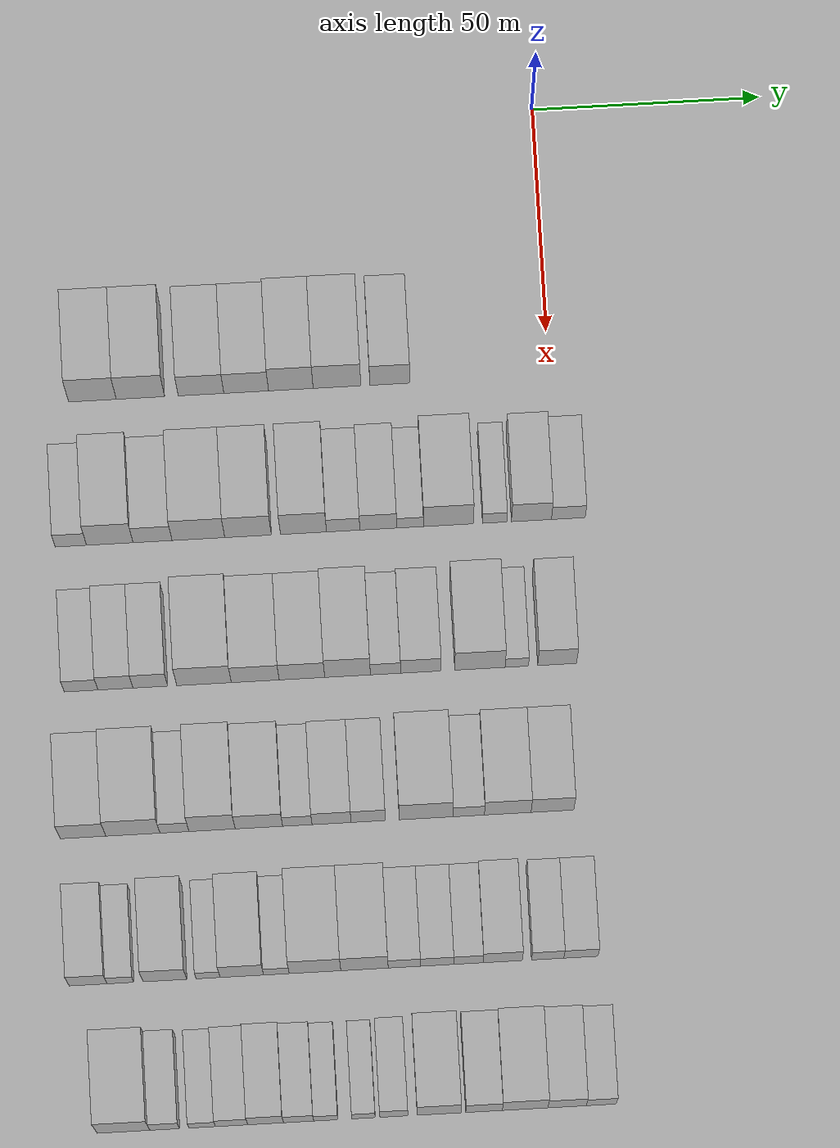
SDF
<sdf version="1.6">
 <world name="default">
  <include><name>ground_plane_1</name><uri>model://HANNAS_ground_plane</uri></include>
  <include>
   <name>ground_plane_2</name>
   <uri>model://HANNAS_ground_plane</uri>
   <pose>100 0 0  0 0 0</pose>
  </include>
  <model name="building_49">
   <static>1</static>
   <pose>50.0000 -99.9588 0 0.000000 0.000000 0.000000</pose>
   <link name="link">
    <pose>0 0 12.00 0 0 0</pose>
    <collision name="collision"><geometry><box><size>20.0000 10.4248 24.0000</size></box></geometry></collision>
    <visual name="visual">
     <cast_shadows>0</cast_shadows>
     <geometry><box><size>20.0000 10.4248 24.0000</size></box></geometry>
     <material>
      <script>
       <uri>model://HANNAS_wall/materials/scripts</uri>
       <uri>model://HANNAS_wall/materials/textures</uri>
       <name>vrc/HANNAS_wall</name>
      </script>
     </material>
    </visual>
   </link>
  </model>
  <model name="building_50">
   <static>1</static>
   <pose>50.0000 -89.4481 0 0.000000 0.000000 0.000000</pose>
   <link name="link">
    <pose>0 0 12.00 0 0 0</pose>
    <collision name="collision"><geometry><box><size>20.0000 10.5966 24.0000</size></box></geometry></collision>
    <visual name="visual">
     <cast_shadows>0</cast_shadows>
     <geometry><box><size>20.0000 10.5966 24.0000</size></box></geometry>
     <material>
      <script>
       <uri>model://HANNAS_wall/materials/scripts</uri>
       <uri>model://HANNAS_wall/materials/textures</uri>
       <name>vrc/HANNAS_wall</name>
      </script>
     </material>
    </visual>
   </link>
  </model>
  <model name="building_51">
   <static>1</static>
   <pose>50.0000 -76.1625 0 0.000000 0.000000 0.000000</pose>
   <link name="link">
    <pose>0 0 10.50 0 0 0</pose>
    <collision name="collision"><geometry><box><size>20.0000 9.9746 21.0000</size></box></geometry></collision>
    <visual name="visual">
     <cast_shadows>0</cast_shadows>
     <geometry><box><size>20.0000 9.9746 21.0000</size></box></geometry>
     <material>
      <script>
       <uri>model://HANNAS_wall/materials/scripts</uri>
       <uri>model://HANNAS_wall/materials/textures</uri>
       <name>vrc/HANNAS_wall</name>
      </script>
     </material>
    </visual>
   </link>
  </model>
  <model name="building_52">
   <static>1</static>
   <pose>50.0000 -66.2710 0 0.000000 0.000000 0.000000</pose>
   <link name="link">
    <pose>0 0 10.50 0 0 0</pose>
    <collision name="collision"><geometry><box><size>20.0000 9.8085 21.0000</size></box></geometry></collision>
    <visual name="visual">
     <cast_shadows>0</cast_shadows>
     <geometry><box><size>20.0000 9.8085 21.0000</size></box></geometry>
     <material>
      <script>
       <uri>model://HANNAS_wall/materials/scripts</uri>
       <uri>model://HANNAS_wall/materials/textures</uri>
       <name>vrc/HANNAS_wall</name>
      </script>
     </material>
    </visual>
   </link>
  </model>
  <model name="building_53">
   <static>1</static>
   <pose>50.0000 -56.4838 0 0.000000 0.000000 0.000000</pose>
   <link name="link">
    <pose>0 0 12.00 0 0 0</pose>
    <collision name="collision"><geometry><box><size>20.0000 9.7658 24.0000</size></box></geometry></collision>
    <visual name="visual">
     <cast_shadows>0</cast_shadows>
     <geometry><box><size>20.0000 9.7658 24.0000</size></box></geometry>
     <material>
      <script>
       <uri>model://HANNAS_wall/materials/scripts</uri>
       <uri>model://HANNAS_wall/materials/textures</uri>
       <name>vrc/HANNAS_wall</name>
      </script>
     </material>
    </visual>
   </link>
  </model>
  <model name="building_54">
   <static>1</static>
   <pose>50.0000 -46.3815 0 0.000000 0.000000 0.000000</pose>
   <link name="link">
    <pose>0 0 12.00 0 0 0</pose>
    <collision name="collision"><geometry><box><size>20.0000 10.4387 24.0000</size></box></geometry></collision>
    <visual name="visual">
     <cast_shadows>0</cast_shadows>
     <geometry><box><size>20.0000 10.4387 24.0000</size></box></geometry>
     <material>
      <script>
       <uri>model://HANNAS_wall/materials/scripts</uri>
       <uri>model://HANNAS_wall/materials/textures</uri>
       <name>vrc/HANNAS_wall</name>
      </script>
     </material>
    </visual>
   </link>
  </model>
  <model name="building_55">
   <static>1</static>
   <pose>50.0000 -34.7973 0 0.000000 0.000000 0.000000</pose>
   <link name="link">
    <pose>0 0 10.50 0 0 0</pose>
    <collision name="collision"><geometry><box><size>20.0000 8.7298 21.0000</size></box></geometry></collision>
    <visual name="visual">
     <cast_shadows>0</cast_shadows>
     <geometry><box><size>20.0000 8.7298 21.0000</size></box></geometry>
     <material>
      <script>
       <uri>model://HANNAS_wall/materials/scripts</uri>
       <uri>model://HANNAS_wall/materials/textures</uri>
       <name>vrc/HANNAS_wall</name>
      </script>
     </material>
    </visual>
   </link>
  </model>
  <model name="building_163">
   <static>1</static>
   <pose>82.0000 -106.1542 0 0.000000 0.000000 0.000000</pose>
   <link name="link">
    <pose>0 0 7.50 0 0 0</pose>
    <collision name="collision"><geometry><box><size>20.0000 6.8394 15.0000</size></box></geometry></collision>
    <visual name="visual">
     <cast_shadows>0</cast_shadows>
     <geometry><box><size>20.0000 6.8394 15.0000</size></box></geometry>
     <material>
      <script>
       <uri>model://HANNAS_wall/materials/scripts</uri>
       <uri>model://HANNAS_wall/materials/textures</uri>
       <name>vrc/HANNAS_wall</name>
      </script>
     </material>
    </visual>
   </link>
  </model>
  <model name="building_164">
   <static>1</static>
   <pose>82.0000 -97.6618 0 0.000000 0.000000 0.000000</pose>
   <link name="link">
    <pose>0 0 12.00 0 0 0</pose>
    <collision name="collision"><geometry><box><size>20.0000 10.1453 24.0000</size></box></geometry></collision>
    <visual name="visual">
     <cast_shadows>0</cast_shadows>
     <geometry><box><size>20.0000 10.1453 24.0000</size></box></geometry>
     <material>
      <script>
       <uri>model://HANNAS_wall/materials/scripts</uri>
       <uri>model://HANNAS_wall/materials/textures</uri>
       <name>vrc/HANNAS_wall</name>
      </script>
     </material>
    </visual>
   </link>
  </model>
  <model name="building_165">
   <static>1</static>
   <pose>82.0000 -88.3430 0 0.000000 0.000000 0.000000</pose>
   <link name="link">
    <pose>0 0 9.00 0 0 0</pose>
    <collision name="collision"><geometry><box><size>20.0000 8.4923 18.0000</size></box></geometry></collision>
    <visual name="visual">
     <cast_shadows>0</cast_shadows>
     <geometry><box><size>20.0000 8.4923 18.0000</size></box></geometry>
     <material>
      <script>
       <uri>model://HANNAS_wall/materials/scripts</uri>
       <uri>model://HANNAS_wall/materials/textures</uri>
       <name>vrc/HANNAS_wall</name>
      </script>
     </material>
    </visual>
   </link>
  </model>
  <model name="building_166">
   <static>1</static>
   <pose>82.0000 -78.3413 0 0.000000 0.000000 0.000000</pose>
   <link name="link">
    <pose>0 0 12.00 0 0 0</pose>
    <collision name="collision"><geometry><box><size>20.0000 11.5110 24.0000</size></box></geometry></collision>
    <visual name="visual">
     <cast_shadows>0</cast_shadows>
     <geometry><box><size>20.0000 11.5110 24.0000</size></box></geometry>
     <material>
      <script>
       <uri>model://HANNAS_wall/materials/scripts</uri>
       <uri>model://HANNAS_wall/materials/textures</uri>
       <name>vrc/HANNAS_wall</name>
      </script>
     </material>
    </visual>
   </link>
  </model>
  <model name="building_167">
   <static>1</static>
   <pose>82.0000 -67.5067 0 0.000000 0.000000 0.000000</pose>
   <link name="link">
    <pose>0 0 12.00 0 0 0</pose>
    <collision name="collision"><geometry><box><size>20.0000 10.1584 24.0000</size></box></geometry></collision>
    <visual name="visual">
     <cast_shadows>0</cast_shadows>
     <geometry><box><size>20.0000 10.1584 24.0000</size></box></geometry>
     <material>
      <script>
       <uri>model://HANNAS_wall/materials/scripts</uri>
       <uri>model://HANNAS_wall/materials/textures</uri>
       <name>vrc/HANNAS_wall</name>
      </script>
     </material>
    </visual>
   </link>
  </model>
  <model name="building_168">
   <static>1</static>
   <pose>82.0000 -55.4093 0 0.000000 0.000000 0.000000</pose>
   <link name="link">
    <pose>0 0 12.00 0 0 0</pose>
    <collision name="collision"><geometry><box><size>20.0000 10.0363 24.0000</size></box></geometry></collision>
    <visual name="visual">
     <cast_shadows>0</cast_shadows>
     <geometry><box><size>20.0000 10.0363 24.0000</size></box></geometry>
     <material>
      <script>
       <uri>model://HANNAS_wall/materials/scripts</uri>
       <uri>model://HANNAS_wall/materials/textures</uri>
       <name>vrc/HANNAS_wall</name>
      </script>
     </material>
    </visual>
   </link>
  </model>
  <model name="building_169">
   <static>1</static>
   <pose>82.0000 -46.7449 0 0.000000 0.000000 0.000000</pose>
   <link name="link">
    <pose>0 0 7.50 0 0 0</pose>
    <collision name="collision"><geometry><box><size>20.0000 7.2926 15.0000</size></box></geometry></collision>
    <visual name="visual">
     <cast_shadows>0</cast_shadows>
     <geometry><box><size>20.0000 7.2926 15.0000</size></box></geometry>
     <material>
      <script>
       <uri>model://HANNAS_wall/materials/scripts</uri>
       <uri>model://HANNAS_wall/materials/textures</uri>
       <name>vrc/HANNAS_wall</name>
      </script>
     </material>
    </visual>
   </link>
  </model>
  <model name="building_170">
   <static>1</static>
   <pose>82.0000 -39.0817 0 0.000000 0.000000 0.000000</pose>
   <link name="link">
    <pose>0 0 9.00 0 0 0</pose>
    <collision name="collision"><geometry><box><size>20.0000 8.0338 18.0000</size></box></geometry></collision>
    <visual name="visual">
     <cast_shadows>0</cast_shadows>
     <geometry><box><size>20.0000 8.0338 18.0000</size></box></geometry>
     <material>
      <script>
       <uri>model://HANNAS_wall/materials/scripts</uri>
       <uri>model://HANNAS_wall/materials/textures</uri>
       <name>vrc/HANNAS_wall</name>
      </script>
     </material>
    </visual>
   </link>
  </model>
  <model name="building_171">
   <static>1</static>
   <pose>82.0000 -32.1521 0 0.000000 0.000000 0.000000</pose>
   <link name="link">
    <pose>0 0 6.00 0 0 0</pose>
    <collision name="collision"><geometry><box><size>20.0000 5.8253 12.0000</size></box></geometry></collision>
    <visual name="visual">
     <cast_shadows>0</cast_shadows>
     <geometry><box><size>20.0000 5.8253 12.0000</size></box></geometry>
     <material>
      <script>
       <uri>model://HANNAS_wall/materials/scripts</uri>
       <uri>model://HANNAS_wall/materials/textures</uri>
       <name>vrc/HANNAS_wall</name>
      </script>
     </material>
    </visual>
   </link>
  </model>
  <model name="building_172">
   <static>1</static>
   <pose>82.0000 -23.7880 0 0.000000 0.000000 0.000000</pose>
   <link name="link">
    <pose>0 0 12.00 0 0 0</pose>
    <collision name="collision"><geometry><box><size>20.0000 10.9029 24.0000</size></box></geometry></collision>
    <visual name="visual">
     <cast_shadows>0</cast_shadows>
     <geometry><box><size>20.0000 10.9029 24.0000</size></box></geometry>
     <material>
      <script>
       <uri>model://HANNAS_wall/materials/scripts</uri>
       <uri>model://HANNAS_wall/materials/textures</uri>
       <name>vrc/HANNAS_wall</name>
      </script>
     </material>
    </visual>
   </link>
  </model>
  <model name="building_173">
   <static>1</static>
   <pose>82.0000 -13.6781 0 0.000000 0.000000 0.000000</pose>
   <link name="link">
    <pose>0 0 6.00 0 0 0</pose>
    <collision name="collision"><geometry><box><size>20.0000 5.3170 12.0000</size></box></geometry></collision>
    <visual name="visual">
     <cast_shadows>0</cast_shadows>
     <geometry><box><size>20.0000 5.3170 12.0000</size></box></geometry>
     <material>
      <script>
       <uri>model://HANNAS_wall/materials/scripts</uri>
       <uri>model://HANNAS_wall/materials/textures</uri>
       <name>vrc/HANNAS_wall</name>
      </script>
     </material>
    </visual>
   </link>
  </model>
  <model name="building_174">
   <static>1</static>
   <pose>82.0000 -5.6536 0 0.000000 0.000000 0.000000</pose>
   <link name="link">
    <pose>0 0 10.50 0 0 0</pose>
    <collision name="collision"><geometry><box><size>20.0000 8.7319 21.0000</size></box></geometry></collision>
    <visual name="visual">
     <cast_shadows>0</cast_shadows>
     <geometry><box><size>20.0000 8.7319 21.0000</size></box></geometry>
     <material>
      <script>
       <uri>model://HANNAS_wall/materials/scripts</uri>
       <uri>model://HANNAS_wall/materials/textures</uri>
       <name>vrc/HANNAS_wall</name>
      </script>
     </material>
    </visual>
   </link>
  </model>
  <model name="building_175">
   <static>1</static>
   <pose>82.0000 2.4077 0 0.000000 0.000000 0.000000</pose>
   <link name="link">
    <pose>0 0 7.50 0 0 0</pose>
    <collision name="collision"><geometry><box><size>20.0000 7.3907 15.0000</size></box></geometry></collision>
    <visual name="visual">
     <cast_shadows>0</cast_shadows>
     <geometry><box><size>20.0000 7.3907 15.0000</size></box></geometry>
     <material>
      <script>
       <uri>model://HANNAS_wall/materials/scripts</uri>
       <uri>model://HANNAS_wall/materials/textures</uri>
       <name>vrc/HANNAS_wall</name>
      </script>
     </material>
    </visual>
   </link>
  </model>
  <model name="building_286">
   <static>1</static>
   <pose>114.0000 -105.4328 0 0.000000 0.000000 0.000000</pose>
   <link name="link">
    <pose>0 0 7.50 0 0 0</pose>
    <collision name="collision"><geometry><box><size>20.0000 7.3170 15.0000</size></box></geometry></collision>
    <visual name="visual">
     <cast_shadows>0</cast_shadows>
     <geometry><box><size>20.0000 7.3170 15.0000</size></box></geometry>
     <material>
      <script>
       <uri>model://HANNAS_wall/materials/scripts</uri>
       <uri>model://HANNAS_wall/materials/textures</uri>
       <name>vrc/HANNAS_wall</name>
      </script>
     </material>
    </visual>
   </link>
  </model>
  <model name="building_287">
   <static>1</static>
   <pose>114.0000 -97.9770 0 0.000000 0.000000 0.000000</pose>
   <link name="link">
    <pose>0 0 9.00 0 0 0</pose>
    <collision name="collision"><geometry><box><size>20.0000 7.5945 18.0000</size></box></geometry></collision>
    <visual name="visual">
     <cast_shadows>0</cast_shadows>
     <geometry><box><size>20.0000 7.5945 18.0000</size></box></geometry>
     <material>
      <script>
       <uri>model://HANNAS_wall/materials/scripts</uri>
       <uri>model://HANNAS_wall/materials/textures</uri>
       <name>vrc/HANNAS_wall</name>
      </script>
     </material>
    </visual>
   </link>
  </model>
  <model name="building_288">
   <static>1</static>
   <pose>114.0000 -90.4084 0 0.000000 0.000000 0.000000</pose>
   <link name="link">
    <pose>0 0 9.00 0 0 0</pose>
    <collision name="collision"><geometry><box><size>20.0000 7.5426 18.0000</size></box></geometry></collision>
    <visual name="visual">
     <cast_shadows>0</cast_shadows>
     <geometry><box><size>20.0000 7.5426 18.0000</size></box></geometry>
     <material>
      <script>
       <uri>model://HANNAS_wall/materials/scripts</uri>
       <uri>model://HANNAS_wall/materials/textures</uri>
       <name>vrc/HANNAS_wall</name>
      </script>
     </material>
    </visual>
   </link>
  </model>
  <model name="building_289">
   <static>1</static>
   <pose>114.0000 -78.7111 0 0.000000 0.000000 0.000000</pose>
   <link name="link">
    <pose>0 0 12.00 0 0 0</pose>
    <collision name="collision"><geometry><box><size>20.0000 11.8520 24.0000</size></box></geometry></collision>
    <visual name="visual">
     <cast_shadows>0</cast_shadows>
     <geometry><box><size>20.0000 11.8520 24.0000</size></box></geometry>
     <material>
      <script>
       <uri>model://HANNAS_wall/materials/scripts</uri>
       <uri>model://HANNAS_wall/materials/textures</uri>
       <name>vrc/HANNAS_wall</name>
      </script>
     </material>
    </visual>
   </link>
  </model>
  <model name="building_290">
   <static>1</static>
   <pose>114.0000 -67.5871 0 0.000000 0.000000 0.000000</pose>
   <link name="link">
    <pose>0 0 10.50 0 0 0</pose>
    <collision name="collision"><geometry><box><size>20.0000 10.3959 21.0000</size></box></geometry></collision>
    <visual name="visual">
     <cast_shadows>0</cast_shadows>
     <geometry><box><size>20.0000 10.3959 21.0000</size></box></geometry>
     <material>
      <script>
       <uri>model://HANNAS_wall/materials/scripts</uri>
       <uri>model://HANNAS_wall/materials/textures</uri>
       <name>vrc/HANNAS_wall</name>
      </script>
     </material>
    </visual>
   </link>
  </model>
  <model name="building_291">
   <static>1</static>
   <pose>114.0000 -57.4362 0 0.000000 0.000000 0.000000</pose>
   <link name="link">
    <pose>0 0 10.50 0 0 0</pose>
    <collision name="collision"><geometry><box><size>20.0000 9.9060 21.0000</size></box></geometry></collision>
    <visual name="visual">
     <cast_shadows>0</cast_shadows>
     <geometry><box><size>20.0000 9.9060 21.0000</size></box></geometry>
     <material>
      <script>
       <uri>model://HANNAS_wall/materials/scripts</uri>
       <uri>model://HANNAS_wall/materials/textures</uri>
       <name>vrc/HANNAS_wall</name>
      </script>
     </material>
    </visual>
   </link>
  </model>
  <model name="building_292">
   <static>1</static>
   <pose>114.0000 -47.5204 0 0.000000 0.000000 0.000000</pose>
   <link name="link">
    <pose>0 0 12.00 0 0 0</pose>
    <collision name="collision"><geometry><box><size>20.0000 9.9255 24.0000</size></box></geometry></collision>
    <visual name="visual">
     <cast_shadows>0</cast_shadows>
     <geometry><box><size>20.0000 9.9255 24.0000</size></box></geometry>
     <material>
      <script>
       <uri>model://HANNAS_wall/materials/scripts</uri>
       <uri>model://HANNAS_wall/materials/textures</uri>
       <name>vrc/HANNAS_wall</name>
      </script>
     </material>
    </visual>
   </link>
  </model>
  <model name="building_293">
   <static>1</static>
   <pose>114.0000 -39.2639 0 0.000000 0.000000 0.000000</pose>
   <link name="link">
    <pose>0 0 7.50 0 0 0</pose>
    <collision name="collision"><geometry><box><size>20.0000 6.5876 15.0000</size></box></geometry></collision>
    <visual name="visual">
     <cast_shadows>0</cast_shadows>
     <geometry><box><size>20.0000 6.5876 15.0000</size></box></geometry>
     <material>
      <script>
       <uri>model://HANNAS_wall/materials/scripts</uri>
       <uri>model://HANNAS_wall/materials/textures</uri>
       <name>vrc/HANNAS_wall</name>
      </script>
     </material>
    </visual>
   </link>
  </model>
  <model name="building_294">
   <static>1</static>
   <pose>114.0000 -31.5886 0 0.000000 0.000000 0.000000</pose>
   <link name="link">
    <pose>0 0 9.00 0 0 0</pose>
    <collision name="collision"><geometry><box><size>20.0000 8.7628 18.0000</size></box></geometry></collision>
    <visual name="visual">
     <cast_shadows>0</cast_shadows>
     <geometry><box><size>20.0000 8.7628 18.0000</size></box></geometry>
     <material>
      <script>
       <uri>model://HANNAS_wall/materials/scripts</uri>
       <uri>model://HANNAS_wall/materials/textures</uri>
       <name>vrc/HANNAS_wall</name>
      </script>
     </material>
    </visual>
   </link>
  </model>
  <model name="building_295">
   <static>1</static>
   <pose>114.0000 -18.7395 0 0.000000 0.000000 0.000000</pose>
   <link name="link">
    <pose>0 0 12.00 0 0 0</pose>
    <collision name="collision"><geometry><box><size>20.0000 10.9355 24.0000</size></box></geometry></collision>
    <visual name="visual">
     <cast_shadows>0</cast_shadows>
     <geometry><box><size>20.0000 10.9355 24.0000</size></box></geometry>
     <material>
      <script>
       <uri>model://HANNAS_wall/materials/scripts</uri>
       <uri>model://HANNAS_wall/materials/textures</uri>
       <name>vrc/HANNAS_wall</name>
      </script>
     </material>
    </visual>
   </link>
  </model>
  <model name="building_296">
   <static>1</static>
   <pose>114.0000 -10.7258 0 0.000000 0.000000 0.000000</pose>
   <link name="link">
    <pose>0 0 6.00 0 0 0</pose>
    <collision name="collision"><geometry><box><size>20.0000 5.0919 12.0000</size></box></geometry></collision>
    <visual name="visual">
     <cast_shadows>0</cast_shadows>
     <geometry><box><size>20.0000 5.0919 12.0000</size></box></geometry>
     <material>
      <script>
       <uri>model://HANNAS_wall/materials/scripts</uri>
       <uri>model://HANNAS_wall/materials/textures</uri>
       <name>vrc/HANNAS_wall</name>
      </script>
     </material>
    </visual>
   </link>
  </model>
  <model name="building_297">
   <static>1</static>
   <pose>114.0000 -1.9573 0 0.000000 0.000000 0.000000</pose>
   <link name="link">
    <pose>0 0 10.50 0 0 0</pose>
    <collision name="collision"><geometry><box><size>20.0000 8.4452 21.0000</size></box></geometry></collision>
    <visual name="visual">
     <cast_shadows>0</cast_shadows>
     <geometry><box><size>20.0000 8.4452 21.0000</size></box></geometry>
     <material>
      <script>
       <uri>model://HANNAS_wall/materials/scripts</uri>
       <uri>model://HANNAS_wall/materials/textures</uri>
       <name>vrc/HANNAS_wall</name>
      </script>
     </material>
    </visual>
   </link>
  </model>
  <model name="building_404">
   <static>1</static>
   <pose>146.0000 -106.5163 0 0.000000 0.000000 0.000000</pose>
   <link name="link">
    <pose>0 0 10.50 0 0 0</pose>
    <collision name="collision"><geometry><box><size>20.0000 9.8703 21.0000</size></box></geometry></collision>
    <visual name="visual">
     <cast_shadows>0</cast_shadows>
     <geometry><box><size>20.0000 9.8703 21.0000</size></box></geometry>
     <material>
      <script>
       <uri>model://HANNAS_wall/materials/scripts</uri>
       <uri>model://HANNAS_wall/materials/textures</uri>
       <name>vrc/HANNAS_wall</name>
      </script>
     </material>
    </visual>
   </link>
  </model>
  <model name="building_405">
   <static>1</static>
   <pose>146.0000 -95.7256 0 0.000000 0.000000 0.000000</pose>
   <link name="link">
    <pose>0 0 12.00 0 0 0</pose>
    <collision name="collision"><geometry><box><size>20.0000 11.7111 24.0000</size></box></geometry></collision>
    <visual name="visual">
     <cast_shadows>0</cast_shadows>
     <geometry><box><size>20.0000 11.7111 24.0000</size></box></geometry>
     <material>
      <script>
       <uri>model://HANNAS_wall/materials/scripts</uri>
       <uri>model://HANNAS_wall/materials/textures</uri>
       <name>vrc/HANNAS_wall</name>
      </script>
     </material>
    </visual>
   </link>
  </model>
  <model name="building_406">
   <static>1</static>
   <pose>146.0000 -86.7287 0 0.000000 0.000000 0.000000</pose>
   <link name="link">
    <pose>0 0 7.50 0 0 0</pose>
    <collision name="collision"><geometry><box><size>20.0000 6.2827 15.0000</size></box></geometry></collision>
    <visual name="visual">
     <cast_shadows>0</cast_shadows>
     <geometry><box><size>20.0000 6.2827 15.0000</size></box></geometry>
     <material>
      <script>
       <uri>model://HANNAS_wall/materials/scripts</uri>
       <uri>model://HANNAS_wall/materials/textures</uri>
       <name>vrc/HANNAS_wall</name>
      </script>
     </material>
    </visual>
   </link>
  </model>
  <model name="building_407">
   <static>1</static>
   <pose>146.0000 -78.5774 0 0.000000 0.000000 0.000000</pose>
   <link name="link">
    <pose>0 0 12.00 0 0 0</pose>
    <collision name="collision"><geometry><box><size>20.0000 10.0199 24.0000</size></box></geometry></collision>
    <visual name="visual">
     <cast_shadows>0</cast_shadows>
     <geometry><box><size>20.0000 10.0199 24.0000</size></box></geometry>
     <material>
      <script>
       <uri>model://HANNAS_wall/materials/scripts</uri>
       <uri>model://HANNAS_wall/materials/textures</uri>
       <name>vrc/HANNAS_wall</name>
      </script>
     </material>
    </visual>
   </link>
  </model>
  <model name="building_408">
   <static>1</static>
   <pose>146.0000 -68.4404 0 0.000000 0.000000 0.000000</pose>
   <link name="link">
    <pose>0 0 10.50 0 0 0</pose>
    <collision name="collision"><geometry><box><size>20.0000 10.2541 21.0000</size></box></geometry></collision>
    <visual name="visual">
     <cast_shadows>0</cast_shadows>
     <geometry><box><size>20.0000 10.2541 21.0000</size></box></geometry>
     <material>
      <script>
       <uri>model://HANNAS_wall/materials/scripts</uri>
       <uri>model://HANNAS_wall/materials/textures</uri>
       <name>vrc/HANNAS_wall</name>
      </script>
     </material>
    </visual>
   </link>
  </model>
  <model name="building_409">
   <static>1</static>
   <pose>146.0000 -60.1306 0 0.000000 0.000000 0.000000</pose>
   <link name="link">
    <pose>0 0 7.50 0 0 0</pose>
    <collision name="collision"><geometry><box><size>20.0000 6.3655 15.0000</size></box></geometry></collision>
    <visual name="visual">
     <cast_shadows>0</cast_shadows>
     <geometry><box><size>20.0000 6.3655 15.0000</size></box></geometry>
     <material>
      <script>
       <uri>model://HANNAS_wall/materials/scripts</uri>
       <uri>model://HANNAS_wall/materials/textures</uri>
       <name>vrc/HANNAS_wall</name>
      </script>
     </material>
    </visual>
   </link>
  </model>
  <model name="building_410">
   <static>1</static>
   <pose>146.0000 -52.7126 0 0.000000 0.000000 0.000000</pose>
   <link name="link">
    <pose>0 0 9.00 0 0 0</pose>
    <collision name="collision"><geometry><box><size>20.0000 8.4705 18.0000</size></box></geometry></collision>
    <visual name="visual">
     <cast_shadows>0</cast_shadows>
     <geometry><box><size>20.0000 8.4705 18.0000</size></box></geometry>
     <material>
      <script>
       <uri>model://HANNAS_wall/materials/scripts</uri>
       <uri>model://HANNAS_wall/materials/textures</uri>
       <name>vrc/HANNAS_wall</name>
      </script>
     </material>
    </visual>
   </link>
  </model>
  <model name="building_411">
   <static>1</static>
   <pose>146.0000 -44.7680 0 0.000000 0.000000 0.000000</pose>
   <link name="link">
    <pose>0 0 9.00 0 0 0</pose>
    <collision name="collision"><geometry><box><size>20.0000 7.4186 18.0000</size></box></geometry></collision>
    <visual name="visual">
     <cast_shadows>0</cast_shadows>
     <geometry><box><size>20.0000 7.4186 18.0000</size></box></geometry>
     <material>
      <script>
       <uri>model://HANNAS_wall/materials/scripts</uri>
       <uri>model://HANNAS_wall/materials/textures</uri>
       <name>vrc/HANNAS_wall</name>
      </script>
     </material>
    </visual>
   </link>
  </model>
  <model name="building_412">
   <static>1</static>
   <pose>146.0000 -32.2275 0 0.000000 0.000000 0.000000</pose>
   <link name="link">
    <pose>0 0 12.00 0 0 0</pose>
    <collision name="collision"><geometry><box><size>20.0000 11.6624 24.0000</size></box></geometry></collision>
    <visual name="visual">
     <cast_shadows>0</cast_shadows>
     <geometry><box><size>20.0000 11.6624 24.0000</size></box></geometry>
     <material>
      <script>
       <uri>model://HANNAS_wall/materials/scripts</uri>
       <uri>model://HANNAS_wall/materials/textures</uri>
       <name>vrc/HANNAS_wall</name>
      </script>
     </material>
    </visual>
   </link>
  </model>
  <model name="building_413">
   <static>1</static>
   <pose>146.0000 -23.0009 0 0.000000 0.000000 0.000000</pose>
   <link name="link">
    <pose>0 0 7.50 0 0 0</pose>
    <collision name="collision"><geometry><box><size>20.0000 6.7908 15.0000</size></box></geometry></collision>
    <visual name="visual">
     <cast_shadows>0</cast_shadows>
     <geometry><box><size>20.0000 6.7908 15.0000</size></box></geometry>
     <material>
      <script>
       <uri>model://HANNAS_wall/materials/scripts</uri>
       <uri>model://HANNAS_wall/materials/textures</uri>
       <name>vrc/HANNAS_wall</name>
      </script>
     </material>
    </visual>
   </link>
  </model>
  <model name="building_414">
   <static>1</static>
   <pose>146.0000 -14.5539 0 0.000000 0.000000 0.000000</pose>
   <link name="link">
    <pose>0 0 10.50 0 0 0</pose>
    <collision name="collision"><geometry><box><size>20.0000 10.1031 21.0000</size></box></geometry></collision>
    <visual name="visual">
     <cast_shadows>0</cast_shadows>
     <geometry><box><size>20.0000 10.1031 21.0000</size></box></geometry>
     <material>
      <script>
       <uri>model://HANNAS_wall/materials/scripts</uri>
       <uri>model://HANNAS_wall/materials/textures</uri>
       <name>vrc/HANNAS_wall</name>
      </script>
     </material>
    </visual>
   </link>
  </model>
  <model name="building_415">
   <static>1</static>
   <pose>146.0000 -4.8749 0 0.000000 0.000000 0.000000</pose>
   <link name="link">
    <pose>0 0 10.50 0 0 0</pose>
    <collision name="collision"><geometry><box><size>20.0000 9.2550 21.0000</size></box></geometry></collision>
    <visual name="visual">
     <cast_shadows>0</cast_shadows>
     <geometry><box><size>20.0000 9.2550 21.0000</size></box></geometry>
     <material>
      <script>
       <uri>model://HANNAS_wall/materials/scripts</uri>
       <uri>model://HANNAS_wall/materials/textures</uri>
       <name>vrc/HANNAS_wall</name>
      </script>
     </material>
    </visual>
   </link>
  </model>
  <model name="building_524">
   <static>1</static>
   <pose>178.0000 -106.9243 0 0.000000 0.000000 0.000000</pose>
   <link name="link">
    <pose>0 0 9.00 0 0 0</pose>
    <collision name="collision"><geometry><box><size>20.0000 8.1544 18.0000</size></box></geometry></collision>
    <visual name="visual">
     <cast_shadows>0</cast_shadows>
     <geometry><box><size>20.0000 8.1544 18.0000</size></box></geometry>
     <material>
      <script>
       <uri>model://HANNAS_wall/materials/scripts</uri>
       <uri>model://HANNAS_wall/materials/textures</uri>
       <name>vrc/HANNAS_wall</name>
      </script>
     </material>
    </visual>
   </link>
  </model>
  <model name="building_525">
   <static>1</static>
   <pose>178.0000 -99.9544 0 0.000000 0.000000 0.000000</pose>
   <link name="link">
    <pose>0 0 6.00 0 0 0</pose>
    <collision name="collision"><geometry><box><size>20.0000 5.7854 12.0000</size></box></geometry></collision>
    <visual name="visual">
     <cast_shadows>0</cast_shadows>
     <geometry><box><size>20.0000 5.7854 12.0000</size></box></geometry>
     <material>
      <script>
       <uri>model://HANNAS_wall/materials/scripts</uri>
       <uri>model://HANNAS_wall/materials/textures</uri>
       <name>vrc/HANNAS_wall</name>
      </script>
     </material>
    </visual>
   </link>
  </model>
  <model name="building_526">
   <static>1</static>
   <pose>178.0000 -90.3539 0 0.000000 0.000000 0.000000</pose>
   <link name="link">
    <pose>0 0 10.50 0 0 0</pose>
    <collision name="collision"><geometry><box><size>20.0000 9.4157 21.0000</size></box></geometry></collision>
    <visual name="visual">
     <cast_shadows>0</cast_shadows>
     <geometry><box><size>20.0000 9.4157 21.0000</size></box></geometry>
     <material>
      <script>
       <uri>model://HANNAS_wall/materials/scripts</uri>
       <uri>model://HANNAS_wall/materials/textures</uri>
       <name>vrc/HANNAS_wall</name>
      </script>
     </material>
    </visual>
   </link>
  </model>
  <model name="building_527">
   <static>1</static>
   <pose>178.0000 -81.0646 0 0.000000 0.000000 0.000000</pose>
   <link name="link">
    <pose>0 0 6.00 0 0 0</pose>
    <collision name="collision"><geometry><box><size>20.0000 5.1629 12.0000</size></box></geometry></collision>
    <visual name="visual">
     <cast_shadows>0</cast_shadows>
     <geometry><box><size>20.0000 5.1629 12.0000</size></box></geometry>
     <material>
      <script>
       <uri>model://HANNAS_wall/materials/scripts</uri>
       <uri>model://HANNAS_wall/materials/textures</uri>
       <name>vrc/HANNAS_wall</name>
      </script>
     </material>
    </visual>
   </link>
  </model>
  <model name="building_528">
   <static>1</static>
   <pose>178.0000 -73.7837 0 0.000000 0.000000 0.000000</pose>
   <link name="link">
    <pose>0 0 10.50 0 0 0</pose>
    <collision name="collision"><geometry><box><size>20.0000 9.3990 21.0000</size></box></geometry></collision>
    <visual name="visual">
     <cast_shadows>0</cast_shadows>
     <geometry><box><size>20.0000 9.3990 21.0000</size></box></geometry>
     <material>
      <script>
       <uri>model://HANNAS_wall/materials/scripts</uri>
       <uri>model://HANNAS_wall/materials/textures</uri>
       <name>vrc/HANNAS_wall</name>
      </script>
     </material>
    </visual>
   </link>
  </model>
  <model name="building_529">
   <static>1</static>
   <pose>178.0000 -66.3254 0 0.000000 0.000000 0.000000</pose>
   <link name="link">
    <pose>0 0 6.00 0 0 0</pose>
    <collision name="collision"><geometry><box><size>20.0000 5.5176 12.0000</size></box></geometry></collision>
    <visual name="visual">
     <cast_shadows>0</cast_shadows>
     <geometry><box><size>20.0000 5.5176 12.0000</size></box></geometry>
     <material>
      <script>
       <uri>model://HANNAS_wall/materials/scripts</uri>
       <uri>model://HANNAS_wall/materials/textures</uri>
       <name>vrc/HANNAS_wall</name>
      </script>
     </material>
    </visual>
   </link>
  </model>
  <model name="building_530">
   <static>1</static>
   <pose>178.0000 -57.9984 0 0.000000 0.000000 0.000000</pose>
   <link name="link">
    <pose>0 0 12.00 0 0 0</pose>
    <collision name="collision"><geometry><box><size>20.0000 11.1363 24.0000</size></box></geometry></collision>
    <visual name="visual">
     <cast_shadows>0</cast_shadows>
     <geometry><box><size>20.0000 11.1363 24.0000</size></box></geometry>
     <material>
      <script>
       <uri>model://HANNAS_wall/materials/scripts</uri>
       <uri>model://HANNAS_wall/materials/textures</uri>
       <name>vrc/HANNAS_wall</name>
      </script>
     </material>
    </visual>
   </link>
  </model>
  <model name="building_531">
   <static>1</static>
   <pose>178.0000 -47.3262 0 0.000000 0.000000 0.000000</pose>
   <link name="link">
    <pose>0 0 12.00 0 0 0</pose>
    <collision name="collision"><geometry><box><size>20.0000 10.2081 24.0000</size></box></geometry></collision>
    <visual name="visual">
     <cast_shadows>0</cast_shadows>
     <geometry><box><size>20.0000 10.2081 24.0000</size></box></geometry>
     <material>
      <script>
       <uri>model://HANNAS_wall/materials/scripts</uri>
       <uri>model://HANNAS_wall/materials/textures</uri>
       <name>vrc/HANNAS_wall</name>
      </script>
     </material>
    </visual>
   </link>
  </model>
  <model name="building_532">
   <static>1</static>
   <pose>178.0000 -38.7410 0 0.000000 0.000000 0.000000</pose>
   <link name="link">
    <pose>0 0 7.50 0 0 0</pose>
    <collision name="collision"><geometry><box><size>20.0000 6.9624 15.0000</size></box></geometry></collision>
    <visual name="visual">
     <cast_shadows>0</cast_shadows>
     <geometry><box><size>20.0000 6.9624 15.0000</size></box></geometry>
     <material>
      <script>
       <uri>model://HANNAS_wall/materials/scripts</uri>
       <uri>model://HANNAS_wall/materials/textures</uri>
       <name>vrc/HANNAS_wall</name>
      </script>
     </material>
    </visual>
   </link>
  </model>
  <model name="building_533">
   <static>1</static>
   <pose>178.0000 -31.6767 0 0.000000 0.000000 0.000000</pose>
   <link name="link">
    <pose>0 0 7.50 0 0 0</pose>
    <collision name="collision"><geometry><box><size>20.0000 7.1662 15.0000</size></box></geometry></collision>
    <visual name="visual">
     <cast_shadows>0</cast_shadows>
     <geometry><box><size>20.0000 7.1662 15.0000</size></box></geometry>
     <material>
      <script>
       <uri>model://HANNAS_wall/materials/scripts</uri>
       <uri>model://HANNAS_wall/materials/textures</uri>
       <name>vrc/HANNAS_wall</name>
      </script>
     </material>
    </visual>
   </link>
  </model>
  <model name="building_534">
   <static>1</static>
   <pose>178.0000 -24.9242 0 0.000000 0.000000 0.000000</pose>
   <link name="link">
    <pose>0 0 7.50 0 0 0</pose>
    <collision name="collision"><geometry><box><size>20.0000 6.3388 15.0000</size></box></geometry></collision>
    <visual name="visual">
     <cast_shadows>0</cast_shadows>
     <geometry><box><size>20.0000 6.3388 15.0000</size></box></geometry>
     <material>
      <script>
       <uri>model://HANNAS_wall/materials/scripts</uri>
       <uri>model://HANNAS_wall/materials/textures</uri>
       <name>vrc/HANNAS_wall</name>
      </script>
     </material>
    </visual>
   </link>
  </model>
  <model name="building_535">
   <static>1</static>
   <pose>178.0000 -17.5263 0 0.000000 0.000000 0.000000</pose>
   <link name="link">
    <pose>0 0 9.00 0 0 0</pose>
    <collision name="collision"><geometry><box><size>20.0000 8.4570 18.0000</size></box></geometry></collision>
    <visual name="visual">
     <cast_shadows>0</cast_shadows>
     <geometry><box><size>20.0000 8.4570 18.0000</size></box></geometry>
     <material>
      <script>
       <uri>model://HANNAS_wall/materials/scripts</uri>
       <uri>model://HANNAS_wall/materials/textures</uri>
       <name>vrc/HANNAS_wall</name>
      </script>
     </material>
    </visual>
   </link>
  </model>
  <model name="building_536">
   <static>1</static>
   <pose>178.0000 -7.8096 0 0.000000 0.000000 0.000000</pose>
   <link name="link">
    <pose>0 0 7.50 0 0 0</pose>
    <collision name="collision"><geometry><box><size>20.0000 6.9763 15.0000</size></box></geometry></collision>
    <visual name="visual">
     <cast_shadows>0</cast_shadows>
     <geometry><box><size>20.0000 6.9763 15.0000</size></box></geometry>
     <material>
      <script>
       <uri>model://HANNAS_wall/materials/scripts</uri>
       <uri>model://HANNAS_wall/materials/textures</uri>
       <name>vrc/HANNAS_wall</name>
      </script>
     </material>
    </visual>
   </link>
  </model>
  <model name="building_537">
   <static>1</static>
   <pose>178.0000 -0.6364 0 0.000000 0.000000 0.000000</pose>
   <link name="link">
    <pose>0 0 7.50 0 0 0</pose>
    <collision name="collision"><geometry><box><size>20.0000 7.3702 15.0000</size></box></geometry></collision>
    <visual name="visual">
     <cast_shadows>0</cast_shadows>
     <geometry><box><size>20.0000 7.3702 15.0000</size></box></geometry>
     <material>
      <script>
       <uri>model://HANNAS_wall/materials/scripts</uri>
       <uri>model://HANNAS_wall/materials/textures</uri>
       <name>vrc/HANNAS_wall</name>
      </script>
     </material>
    </visual>
   </link>
  </model>
  <model name="building_651">
   <static>1</static>
   <pose>210.0000 -100.8322 0 0.000000 0.000000 0.000000</pose>
   <link name="link">
    <pose>0 0 12.00 0 0 0</pose>
    <collision name="collision"><geometry><box><size>20.0000 11.3244 24.0000</size></box></geometry></collision>
    <visual name="visual">
     <cast_shadows>0</cast_shadows>
     <geometry><box><size>20.0000 11.3244 24.0000</size></box></geometry>
     <material>
      <script>
       <uri>model://HANNAS_wall/materials/scripts</uri>
       <uri>model://HANNAS_wall/materials/textures</uri>
       <name>vrc/HANNAS_wall</name>
      </script>
     </material>
    </visual>
   </link>
  </model>
  <model name="building_652">
   <static>1</static>
   <pose>210.0000 -91.9791 0 0.000000 0.000000 0.000000</pose>
   <link name="link">
    <pose>0 0 7.50 0 0 0</pose>
    <collision name="collision"><geometry><box><size>20.0000 6.3816 15.0000</size></box></geometry></collision>
    <visual name="visual">
     <cast_shadows>0</cast_shadows>
     <geometry><box><size>20.0000 6.3816 15.0000</size></box></geometry>
     <material>
      <script>
       <uri>model://HANNAS_wall/materials/scripts</uri>
       <uri>model://HANNAS_wall/materials/textures</uri>
       <name>vrc/HANNAS_wall</name>
      </script>
     </material>
    </visual>
   </link>
  </model>
  <model name="building_653">
   <static>1</static>
   <pose>210.0000 -83.9357 0 0.000000 0.000000 0.000000</pose>
   <link name="link">
    <pose>0 0 6.00 0 0 0</pose>
    <collision name="collision"><geometry><box><size>20.0000 5.7053 12.0000</size></box></geometry></collision>
    <visual name="visual">
     <cast_shadows>0</cast_shadows>
     <geometry><box><size>20.0000 5.7053 12.0000</size></box></geometry>
     <material>
      <script>
       <uri>model://HANNAS_wall/materials/scripts</uri>
       <uri>model://HANNAS_wall/materials/textures</uri>
       <name>vrc/HANNAS_wall</name>
      </script>
     </material>
    </visual>
   </link>
  </model>
  <model name="building_654">
   <static>1</static>
   <pose>210.0000 -77.6134 0 0.000000 0.000000 0.000000</pose>
   <link name="link">
    <pose>0 0 7.50 0 0 0</pose>
    <collision name="collision"><geometry><box><size>20.0000 6.9391 15.0000</size></box></geometry></collision>
    <visual name="visual">
     <cast_shadows>0</cast_shadows>
     <geometry><box><size>20.0000 6.9391 15.0000</size></box></geometry>
     <material>
      <script>
       <uri>model://HANNAS_wall/materials/scripts</uri>
       <uri>model://HANNAS_wall/materials/textures</uri>
       <name>vrc/HANNAS_wall</name>
      </script>
     </material>
    </visual>
   </link>
  </model>
  <model name="building_655">
   <static>1</static>
   <pose>210.0000 -70.3130 0 0.000000 0.000000 0.000000</pose>
   <link name="link">
    <pose>0 0 9.00 0 0 0</pose>
    <collision name="collision"><geometry><box><size>20.0000 7.6618 18.0000</size></box></geometry></collision>
    <visual name="visual">
     <cast_shadows>0</cast_shadows>
     <geometry><box><size>20.0000 7.6618 18.0000</size></box></geometry>
     <material>
      <script>
       <uri>model://HANNAS_wall/materials/scripts</uri>
       <uri>model://HANNAS_wall/materials/textures</uri>
       <name>vrc/HANNAS_wall</name>
      </script>
     </material>
    </visual>
   </link>
  </model>
  <model name="building_656">
   <static>1</static>
   <pose>210.0000 -63.2336 0 0.000000 0.000000 0.000000</pose>
   <link name="link">
    <pose>0 0 7.50 0 0 0</pose>
    <collision name="collision"><geometry><box><size>20.0000 6.4969 15.0000</size></box></geometry></collision>
    <visual name="visual">
     <cast_shadows>0</cast_shadows>
     <geometry><box><size>20.0000 6.4969 15.0000</size></box></geometry>
     <material>
      <script>
       <uri>model://HANNAS_wall/materials/scripts</uri>
       <uri>model://HANNAS_wall/materials/textures</uri>
       <name>vrc/HANNAS_wall</name>
      </script>
     </material>
    </visual>
   </link>
  </model>
  <model name="building_657">
   <static>1</static>
   <pose>210.0000 -57.3788 0 0.000000 0.000000 0.000000</pose>
   <link name="link">
    <pose>0 0 6.00 0 0 0</pose>
    <collision name="collision"><geometry><box><size>20.0000 5.2127 12.0000</size></box></geometry></collision>
    <visual name="visual">
     <cast_shadows>0</cast_shadows>
     <geometry><box><size>20.0000 5.2127 12.0000</size></box></geometry>
     <material>
      <script>
       <uri>model://HANNAS_wall/materials/scripts</uri>
       <uri>model://HANNAS_wall/materials/textures</uri>
       <name>vrc/HANNAS_wall</name>
      </script>
     </material>
    </visual>
   </link>
  </model>
  <model name="building_658">
   <static>1</static>
   <pose>210.0000 -49.2738 0 0.000000 0.000000 0.000000</pose>
   <link name="link">
    <pose>0 0 6.00 0 0 0</pose>
    <collision name="collision"><geometry><box><size>20.0000 4.9975 12.0000</size></box></geometry></collision>
    <visual name="visual">
     <cast_shadows>0</cast_shadows>
     <geometry><box><size>20.0000 4.9975 12.0000</size></box></geometry>
     <material>
      <script>
       <uri>model://HANNAS_wall/materials/scripts</uri>
       <uri>model://HANNAS_wall/materials/textures</uri>
       <name>vrc/HANNAS_wall</name>
      </script>
     </material>
    </visual>
   </link>
  </model>
  <model name="building_659">
   <static>1</static>
   <pose>210.0000 -42.7690 0 0.000000 0.000000 0.000000</pose>
   <link name="link">
    <pose>0 0 7.50 0 0 0</pose>
    <collision name="collision"><geometry><box><size>20.0000 6.0121 15.0000</size></box></geometry></collision>
    <visual name="visual">
     <cast_shadows>0</cast_shadows>
     <geometry><box><size>20.0000 6.0121 15.0000</size></box></geometry>
     <material>
      <script>
       <uri>model://HANNAS_wall/materials/scripts</uri>
       <uri>model://HANNAS_wall/materials/textures</uri>
       <name>vrc/HANNAS_wall</name>
      </script>
     </material>
    </visual>
   </link>
  </model>
  <model name="building_660">
   <static>1</static>
   <pose>210.0000 -33.0466 0 0.000000 0.000000 0.000000</pose>
   <link name="link">
    <pose>0 0 10.50 0 0 0</pose>
    <collision name="collision"><geometry><box><size>20.0000 9.4326 21.0000</size></box></geometry></collision>
    <visual name="visual">
     <cast_shadows>0</cast_shadows>
     <geometry><box><size>20.0000 9.4326 21.0000</size></box></geometry>
     <material>
      <script>
       <uri>model://HANNAS_wall/materials/scripts</uri>
       <uri>model://HANNAS_wall/materials/textures</uri>
       <name>vrc/HANNAS_wall</name>
      </script>
     </material>
    </visual>
   </link>
  </model>
  <model name="building_661">
   <static>1</static>
   <pose>210.0000 -23.3984 0 0.000000 0.000000 0.000000</pose>
   <link name="link">
    <pose>0 0 9.00 0 0 0</pose>
    <collision name="collision"><geometry><box><size>20.0000 7.8639 18.0000</size></box></geometry></collision>
    <visual name="visual">
     <cast_shadows>0</cast_shadows>
     <geometry><box><size>20.0000 7.8639 18.0000</size></box></geometry>
     <material>
      <script>
       <uri>model://HANNAS_wall/materials/scripts</uri>
       <uri>model://HANNAS_wall/materials/textures</uri>
       <name>vrc/HANNAS_wall</name>
      </script>
     </material>
    </visual>
   </link>
  </model>
  <model name="building_662">
   <static>1</static>
   <pose>210.0000 -14.5621 0 0.000000 0.000000 0.000000</pose>
   <link name="link">
    <pose>0 0 10.50 0 0 0</pose>
    <collision name="collision"><geometry><box><size>20.0000 9.8087 21.0000</size></box></geometry></collision>
    <visual name="visual">
     <cast_shadows>0</cast_shadows>
     <geometry><box><size>20.0000 9.8087 21.0000</size></box></geometry>
     <material>
      <script>
       <uri>model://HANNAS_wall/materials/scripts</uri>
       <uri>model://HANNAS_wall/materials/textures</uri>
       <name>vrc/HANNAS_wall</name>
      </script>
     </material>
    </visual>
   </link>
  </model>
  <model name="building_663">
   <static>1</static>
   <pose>210.0000 -5.5332 0 0.000000 0.000000 0.000000</pose>
   <link name="link">
    <pose>0 0 9.00 0 0 0</pose>
    <collision name="collision"><geometry><box><size>20.0000 8.2492 18.0000</size></box></geometry></collision>
    <visual name="visual">
     <cast_shadows>0</cast_shadows>
     <geometry><box><size>20.0000 8.2492 18.0000</size></box></geometry>
     <material>
      <script>
       <uri>model://HANNAS_wall/materials/scripts</uri>
       <uri>model://HANNAS_wall/materials/textures</uri>
       <name>vrc/HANNAS_wall</name>
      </script>
     </material>
    </visual>
   </link>
  </model>
  <model name="building_664">
   <static>1</static>
   <pose>210.0000 1.8162 0 0.000000 0.000000 0.000000</pose>
   <link name="link">
    <pose>0 0 7.50 0 0 0</pose>
    <collision name="collision"><geometry><box><size>20.0000 6.4497 15.0000</size></box></geometry></collision>
    <visual name="visual">
     <cast_shadows>0</cast_shadows>
     <geometry><box><size>20.0000 6.4497 15.0000</size></box></geometry>
     <material>
      <script>
       <uri>model://HANNAS_wall/materials/scripts</uri>
       <uri>model://HANNAS_wall/materials/textures</uri>
       <name>vrc/HANNAS_wall</name>
      </script>
     </material>
    </visual>
   </link>
  </model>
 </world>
</sdf>
